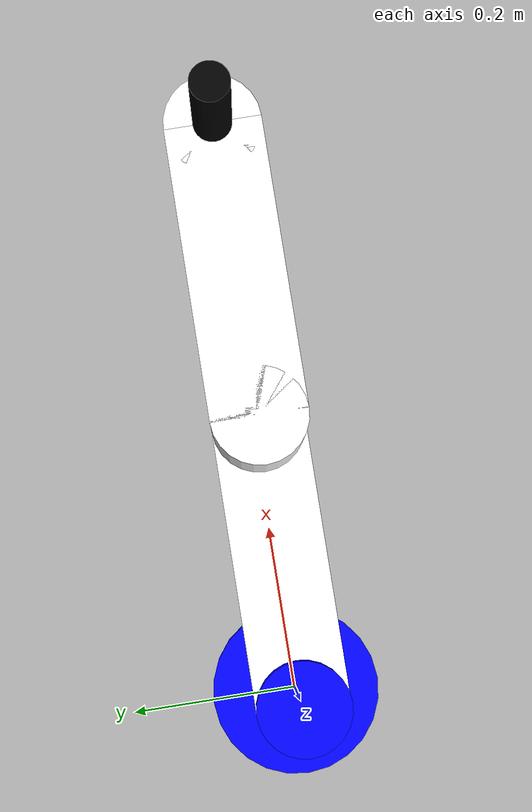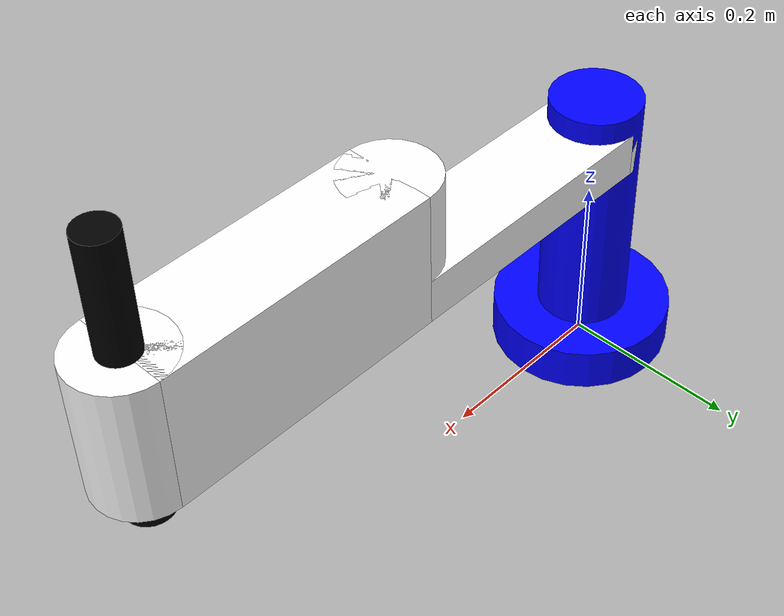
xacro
<robot name="scara_robot" xmlns:xacro="http://www.ros.org/wiki/xacro">

  <xacro:include filename="gazebo_references.xacro" />

  <!-- LINKS -->
  <link name="base_footprint" />

  <link name="base">
    <visual>
        <geometry>
          <cylinder radius="0.1" length="0.05" />
        </geometry>
        <origin rpy="0 0 0" xyz="0 0 0" />
        <material name="blue" />
    </visual>
    <visual>
      <geometry>
        <cylinder radius="0.05" length="0.3" />
      </geometry>
      <origin rpy="0 0 0" xyz="0 0 0.15" />
      <material name="blue" />
    </visual>

    <collision>
      <origin xyz="0.0 0.0 0.15" rpy="0.0 0.0 0.0" />
      <geometry>
        <cylinder radius="0.1" length="0.3" />
      </geometry>
    </collision>

    <inertial>
      <origin xyz="0.0 0.0 0.0" rpy="0.0 0.0 0.0" />
      <mass value="10.0"/>
      <inertia ixx="0.0228" ixy="0.0" ixz="0.0" iyy="0.0228" iyz="0.0" izz="0.0006" />
    </inertial>
  </link>

  <link name="link_1">
    <visual>
      <geometry>
        <box size="0.3 0.1 0.05" />
      </geometry>
      <origin rpy="0 0 0" xyz="0.15 0 0" />
      <material name="white"/>
    </visual>
    <visual>
      <geometry>
        <cylinder radius="0.05" length="0.05" />
      </geometry>
      <origin rpy="0 0 0" xyz="0 0 0" />
      <material name="white"/>
    </visual>
    <visual>
      <geometry>
        <cylinder radius="0.05" length="0.05" />
      </geometry>
      <origin rpy="0 0 0" xyz="0.3 0 0" />
      <material name="white"/>
    </visual>

    <collision>
      <origin xyz="0.15 0.0 0.0" rpy="0.0 0.0 0.0" />
      <geometry>
        <box size="0.4 0.1 0.05" />
      </geometry>
    </collision>

    <inertial>
      <origin xyz="0.0 0.0 0.0" rpy="0.0 0.0 0.0" />
      <mass value="5.0" />
      <inertia ixx="0.005208" ixy="0.0" ixz="0.0" iyy="0.03854" iyz="0.0" izz="0.041667" />
    </inertial>
  </link>

  <link name="link_2">
    <visual>
      <geometry>
        <box size="0.3 0.1 0.15" />
      </geometry>
      <origin rpy="0 0 0" xyz="0.15 0 0" />
      <material name="white"/>
    </visual>
    <visual>
      <geometry>
        <cylinder radius="0.05" length="0.15" />
      </geometry>
      <origin rpy="0 0 0" xyz="0 0 0" />
      <material name="white"/>
    </visual>
    <visual>
      <geometry>
        <cylinder radius="0.05" length="0.15" />
      </geometry>
      <origin rpy="0 0 0" xyz="0.3 0 0" />
      <material name="white"/>
    </visual>

    <collision>
      <origin xyz="0.15 0.0 0.0" rpy="0.0 0.0 0.0" />
      <geometry>
        <box size="0.4 0.1 0.15" />
      </geometry>
      <material name="red" />
    </collision>

    <inertial>
      <origin xyz="0.0 0.0 0.0" rpy="0.0 0.0 0.0" />
      <mass value="3.5"/>
      <inertia ixx="0.02708" ixy="0.0" ixz="0.0" iyy="0.09375" iyz="0.0" izz="0.08333" />
    </inertial>
  </link>

  <link name="link_3">
    <visual>
      <geometry>
        <cylinder radius="0.02" length="0.3" />
      </geometry>
      <origin rpy="0 0 0" xyz="0 0 0.1" />
      <material name="black" />
    </visual>
    <collision>
      <geometry>
        <cylinder radius="0.02" length="0.3" />
      </geometry>
      <origin rpy="0 0 0" xyz="0 0 0.1" />
      <material name="red" />
    </collision>

    <inertial>
      <origin xyz="0.0 0.0 0.0" rpy="0.0 0.0 0.0" />
      <mass value="0.5"/>
      <inertia ixx="0.0228" ixy="0.0" ixz="0.0" iyy="0.0228" iyz="0.0" izz="0.0006" />
    </inertial>
  </link>

  <link name="link_4">
    <visual>
      <origin xyz="0.0 0.0 0.0" rpy="0.0 0.0 0.0" />
      <geometry>
        <cylinder radius="0.025" length="0.025"/>
      </geometry>
      <material name="black" />
    </visual>

    <collision>
      <origin xyz="0.0 0.0 0.0" rpy="0.0 0.0 0.0" />
      <geometry>
        <cylinder radius="0.025" length="0.025"/>
      </geometry>
      <material name="red" />
    </collision>

    <inertial>
      <origin xyz="0.0 0.0 0.0" rpy="0.0 0.0 0.0" />
      <mass value="0.5"/>
      <inertia ixx="0.000625" ixy="0.0" ixz="0.0" iyy="0.000625" iyz="0.0" izz="0.0009375" />
    </inertial>
  </link>

  <!-- JOINTS -->

  <joint name="footprint" type="fixed">
    <parent link="base_footprint" />
    <child link="base"/>
    <origin xyz="0.0 0.0 0.025" rpy="0.0 0.0 0.0" />
  </joint>

  <joint name="joint_1" type="revolute">
    <parent link="base" />
    <child link="link_1" />
    <limit lower="-2.356" upper="2.356" effort="10.0" velocity="1.0"/>
    <origin rpy="0 0 0" xyz="0 0 0.25" />
    <axis xyz="0 0 1" />
  </joint>

  <joint name="joint_2" type="revolute">
    <parent link="link_1" />
    <child link="link_2" />
    <origin rpy="0 0 0" xyz="0.3 0 0.05" />
    <limit lower="-2.356" upper="2.356" effort="10.0" velocity="1.0"/>
    <axis xyz="0 0 1" />
  </joint>

  <joint name="joint_3" type="prismatic">
    <parent link="link_2" />
    <child link="link_3" />
    <origin rpy="0 0 0" xyz="0.3 0 -0.05" />
    <limit lower="0.0" upper="0.2" effort="10.0" velocity="1.0"/>
    <axis xyz="0 0 -1" />
  </joint>

  <joint name="joint_4" type="continuous">
    <parent link="link_3" />
    <child link="link_4" />
    <origin rpy="0.0 0.0 0.0" xyz="0.0 0.0 -0.05" />
    <axis xyz="0.0 0.0 1.0"/>
  </joint>
</robot>

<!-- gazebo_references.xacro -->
<robot xmlns:xacro="http://www.ros.org/wiki/xacro">

    <material name="black">
        <color rgba="0.0 0.0 0.0 1.0" />
      </material>

      <material name="blue">
        <color rgba="0.0 0.0 1.0 1.0" />
      </material>

      <material name="white">
        <color rgba="1.0 1.0 1.0 1.0" />
      </material>

      <material name="red">
        <color rgba="1.0 0.0 0.0 1.0" />
      </material>

    <gazebo reference="base">
        <material>Gazebo/Blue</material>
        <mu1>1.0</mu1>
        <mu2>1.0</mu2>
        <maxContacts>1</maxContacts>
    </gazebo>

    <gazebo reference="link_1">
        <material>Gazebo/White</material>
        <mu1>1.0</mu1>
        <mu2>1.0</mu2>
        <maxContacts>1</maxContacts>
    </gazebo>

    <gazebo reference="link_2">
        <material>Gazebo/White</material>
        <mu1>1.0</mu1>
        <mu2>1.0</mu2>
        <maxContacts>1</maxContacts>
    </gazebo>

    <gazebo reference="link_3">
        <material>Gazebo/Black</material>
        <mu1>1.0</mu1>
        <mu2>1.0</mu2>
        <maxContacts>1</maxContacts>
    </gazebo>

    <gazebo reference="link_4">
        <material>Gazebo/Black</material>
        <mu1>1.0</mu1>
        <mu2>1.0</mu2>
        <maxContacts>1</maxContacts>
    </gazebo>
</robot>
